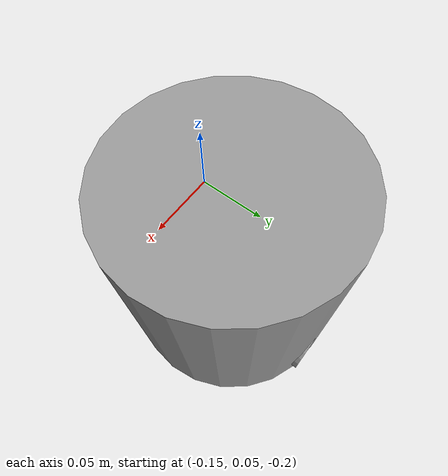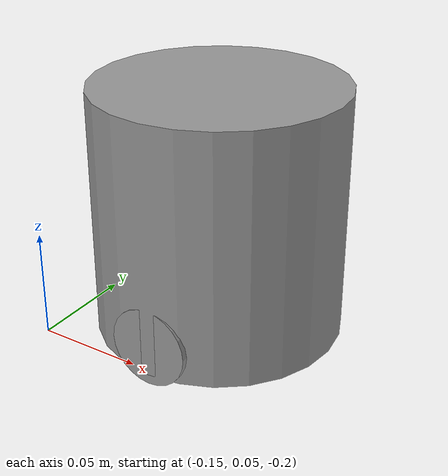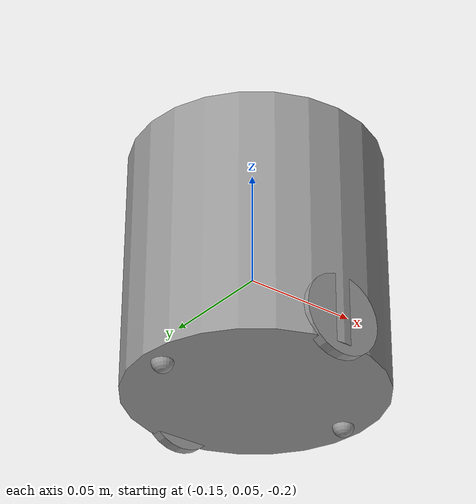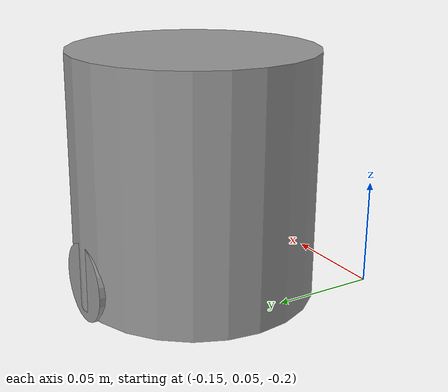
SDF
<?xml version='1.0'?>
<sdf version='1.6'>
  <model name='diffdrive'>
    <link name='body_link'>
      <inertial>
        <mass>0.5</mass>
        <inertia>
          <ixx>0.00105</ixx>
          <ixy>0</ixy>
          <ixz>0</ixz>
          <iyy>0.00105</iyy>
          <iyz>0</iyz>
          <izz>0.0009</izz>
        </inertia>
        <pose frame=''>0 0 0 0 -0 0</pose>
      </inertial>
      <pose frame=''>-0.09669 0.115845 -0.147804 0 -0 0</pose>
      <gravity>1</gravity>
      <self_collide>0</self_collide>
      <kinematic>0</kinematic>
      <enable_wind>0</enable_wind>
      <visual name='visual'>
        <pose frame=''>0 0 0 0 -0 0</pose>
        <geometry>
          <cylinder>
            <radius>0.06</radius>
            <length>0.12</length>
          </cylinder>
        </geometry>
        <material>
          <lighting>1</lighting>
          <script>
            <uri>file://media/materials/scripts/gazebo.material</uri>
            <name>Gazebo/Grey</name>
          </script>
          <shader type='vertex'>
            <normal_map>__default__</normal_map>
          </shader>
          <ambient>0.3 0.3 0.3 1</ambient>
          <diffuse>0.7 0.7 0.7 1</diffuse>
          <specular>0.01 0.01 0.01 1</specular>
          <emissive>0 0 0 1</emissive>
        </material>
        <transparency>0</transparency>
        <cast_shadows>1</cast_shadows>
      </visual>
      <collision name='collision'>
        <laser_retro>0</laser_retro>
        <max_contacts>10</max_contacts>
        <pose frame=''>0 0 0 0 -0 0</pose>
        <geometry>
          <cylinder>
            <radius>0.06</radius>
            <length>0.12</length>
          </cylinder>
        </geometry>
        <surface>
          <friction>
            <ode>
              <mu>1</mu>
              <mu2>1</mu2>
              <fdir1>0 0 0</fdir1>
              <slip1>0</slip1>
              <slip2>0</slip2>
            </ode>
            <torsional>
              <coefficient>1</coefficient>
              <patch_radius>0</patch_radius>
              <surface_radius>0</surface_radius>
              <use_patch_radius>1</use_patch_radius>
              <ode>
                <slip>0</slip>
              </ode>
            </torsional>
          </friction>
          <bounce>
            <restitution_coefficient>0</restitution_coefficient>
            <threshold>1e+06</threshold>
          </bounce>
          <contact>
            <collide_without_contact>0</collide_without_contact>
            <collide_without_contact_bitmask>1</collide_without_contact_bitmask>
            <collide_bitmask>1</collide_bitmask>
            <ode>
              <soft_cfm>0</soft_cfm>
              <soft_erp>0.2</soft_erp>
              <kp>1e+13</kp>
              <kd>1</kd>
              <max_vel>0.01</max_vel>
              <min_depth>0</min_depth>
            </ode>
            <bullet>
              <split_impulse>1</split_impulse>
              <split_impulse_penetration_threshold>-0.01</split_impulse_penetration_threshold>
              <soft_cfm>0</soft_cfm>
              <soft_erp>0.2</soft_erp>
              <kp>1e+13</kp>
              <kd>1</kd>
            </bullet>
          </contact>
        </surface>
      </collision>
    </link>
    <link name='link_0_0'>
      <inertial>
        <mass>0.001</mass>
        <inertia>
          <ixx>1e-08</ixx>
          <ixy>0</ixy>
          <ixz>0</ixz>
          <iyy>1e-08</iyy>
          <iyz>0</iyz>
          <izz>1e-08</izz>
        </inertia>
        <pose frame=''>0 0 0 0 -0 0</pose>
      </inertial>
      <pose frame=''>-0.04669 0.115845 -0.207804 -2.8e-05 -0.084293 0.000563</pose>
      <gravity>1</gravity>
      <self_collide>0</self_collide>
      <kinematic>0</kinematic>
      <enable_wind>0</enable_wind>
      <visual name='visual'>
        <pose frame=''>0 0 0 0 -0 0</pose>
        <geometry>
          <sphere>
            <radius>0.005</radius>
          </sphere>
        </geometry>
        <material>
          <lighting>1</lighting>
          <script>
            <uri>file://media/materials/scripts/gazebo.material</uri>
            <name>Gazebo/Grey</name>
          </script>
          <shader type='vertex'>
            <normal_map>__default__</normal_map>
          </shader>
          <ambient>0.3 0.3 0.3 1</ambient>
          <diffuse>0.7 0.7 0.7 1</diffuse>
          <specular>0.01 0.01 0.01 1</specular>
          <emissive>0 0 0 1</emissive>
        </material>
        <transparency>0</transparency>
        <cast_shadows>1</cast_shadows>
      </visual>
      <collision name='collision'>
        <laser_retro>0</laser_retro>
        <max_contacts>10</max_contacts>
        <pose frame=''>0 0 0 0 -0 0</pose>
        <geometry>
          <sphere>
            <radius>0.005</radius>
          </sphere>
        </geometry>
        <surface>
          <friction>
            <ode>
              <mu>1</mu>
              <mu2>1</mu2>
              <fdir1>0 0 0</fdir1>
              <slip1>0</slip1>
              <slip2>0</slip2>
            </ode>
            <torsional>
              <coefficient>1</coefficient>
              <patch_radius>0</patch_radius>
              <surface_radius>0</surface_radius>
              <use_patch_radius>1</use_patch_radius>
              <ode>
                <slip>0</slip>
              </ode>
            </torsional>
          </friction>
          <bounce>
            <restitution_coefficient>0</restitution_coefficient>
            <threshold>1e+06</threshold>
          </bounce>
          <contact>
            <collide_without_contact>0</collide_without_contact>
            <collide_without_contact_bitmask>1</collide_without_contact_bitmask>
            <collide_bitmask>1</collide_bitmask>
            <ode>
              <soft_cfm>0</soft_cfm>
              <soft_erp>0.2</soft_erp>
              <kp>1e+13</kp>
              <kd>1</kd>
              <max_vel>0.01</max_vel>
              <min_depth>0</min_depth>
            </ode>
            <bullet>
              <split_impulse>1</split_impulse>
              <split_impulse_penetration_threshold>-0.01</split_impulse_penetration_threshold>
              <soft_cfm>0</soft_cfm>
              <soft_erp>0.2</soft_erp>
              <kp>1e+13</kp>
              <kd>1</kd>
            </bullet>
          </contact>
        </surface>
      </collision>
    </link>
    <link name='link_0_0_clone'>
      <inertial>
        <mass>0.001</mass>
        <inertia>
          <ixx>1e-08</ixx>
          <ixy>0</ixy>
          <ixz>0</ixz>
          <iyy>1e-08</iyy>
          <iyz>0</iyz>
          <izz>1e-08</izz>
        </inertia>
        <pose frame=''>0 0 0 0 -0 0</pose>
      </inertial>
      <pose frame=''>-0.14669 0.115845 -0.207804 -0.000104 -0.168586 0.001134</pose>
      <gravity>1</gravity>
      <self_collide>0</self_collide>
      <kinematic>0</kinematic>
      <enable_wind>0</enable_wind>
      <visual name='visual_0'>
        <pose frame=''>0 0 0 0 -0 0</pose>
        <geometry>
          <sphere>
            <radius>0.005</radius>
          </sphere>
        </geometry>
        <material>
          <lighting>1</lighting>
          <script>
            <uri>file://media/materials/scripts/gazebo.material</uri>
            <name>Gazebo/Grey</name>
          </script>
          <shader type='vertex'>
            <normal_map>__default__</normal_map>
          </shader>
          <ambient>0.3 0.3 0.3 1</ambient>
          <diffuse>0.7 0.7 0.7 1</diffuse>
          <specular>0.01 0.01 0.01 1</specular>
          <emissive>0 0 0 1</emissive>
        </material>
        <transparency>0</transparency>
        <cast_shadows>1</cast_shadows>
      </visual>
      <collision name='collision'>
        <laser_retro>0</laser_retro>
        <max_contacts>10</max_contacts>
        <pose frame=''>0 0 0 0 -0 0</pose>
        <geometry>
          <sphere>
            <radius>0.005</radius>
          </sphere>
        </geometry>
        <surface>
          <friction>
            <ode>
              <mu>1</mu>
              <mu2>1</mu2>
              <fdir1>0 0 0</fdir1>
              <slip1>0</slip1>
              <slip2>0</slip2>
            </ode>
            <torsional>
              <coefficient>1</coefficient>
              <patch_radius>0</patch_radius>
              <surface_radius>0</surface_radius>
              <use_patch_radius>1</use_patch_radius>
              <ode>
                <slip>0</slip>
              </ode>
            </torsional>
          </friction>
          <bounce>
            <restitution_coefficient>0</restitution_coefficient>
            <threshold>1e+06</threshold>
          </bounce>
          <contact>
            <collide_without_contact>0</collide_without_contact>
            <collide_without_contact_bitmask>1</collide_without_contact_bitmask>
            <collide_bitmask>1</collide_bitmask>
            <ode>
              <soft_cfm>0</soft_cfm>
              <soft_erp>0.2</soft_erp>
              <kp>1e+13</kp>
              <kd>1</kd>
              <max_vel>0.01</max_vel>
              <min_depth>0</min_depth>
            </ode>
            <bullet>
              <split_impulse>1</split_impulse>
              <split_impulse_penetration_threshold>-0.01</split_impulse_penetration_threshold>
              <soft_cfm>0</soft_cfm>
              <soft_erp>0.2</soft_erp>
              <kp>1e+13</kp>
              <kd>1</kd>
            </bullet>
          </contact>
        </surface>
      </collision>
    </link>
    <link name='link_1'>
      <inertial>
        <mass>0.1</mass>
        <inertia>
          <ixx>9.23e-06</ixx>
          <ixy>0</ixy>
          <ixz>0</ixz>
          <iyy>9.23e-06</iyy>
          <iyz>0</iyz>
          <izz>1.805e-05</izz>
        </inertia>
        <pose frame=''>0 0 0 0 -0 0</pose>
      </inertial>
      <pose frame=''>-0.09669 0.172845 -0.193804 1.5707 -0 0</pose>
      <gravity>1</gravity>
      <self_collide>0</self_collide>
      <kinematic>0</kinematic>
      <enable_wind>0</enable_wind>
      <visual name='visual'>
        <pose frame=''>0 0 0 0 -0 0</pose>
        <geometry>
          <cylinder>
            <radius>0.019</radius>
            <length>0.005</length>
          </cylinder>
        </geometry>
        <material>
          <lighting>1</lighting>
          <script>
            <uri>file://media/materials/scripts/gazebo.material</uri>
            <name>Gazebo/Grey</name>
          </script>
          <shader type='vertex'>
            <normal_map>__default__</normal_map>
          </shader>
          <ambient>0.3 0.3 0.3 1</ambient>
          <diffuse>0.7 0.7 0.7 1</diffuse>
          <specular>0.01 0.01 0.01 1</specular>
          <emissive>0 0 0 1</emissive>
        </material>
        <transparency>0</transparency>
        <cast_shadows>1</cast_shadows>
      </visual>
      <collision name='collision'>
        <laser_retro>0</laser_retro>
        <max_contacts>10</max_contacts>
        <pose frame=''>0 0 0 0 -0 0</pose>
        <geometry>
          <cylinder>
            <radius>0.019</radius>
            <length>0.005</length>
          </cylinder>
        </geometry>
        <surface>
          <friction>
            <ode>
              <mu>1</mu>
              <mu2>1</mu2>
              <fdir1>0 0 0</fdir1>
              <slip1>0</slip1>
              <slip2>0</slip2>
            </ode>
            <torsional>
              <coefficient>1</coefficient>
              <patch_radius>0</patch_radius>
              <surface_radius>0</surface_radius>
              <use_patch_radius>1</use_patch_radius>
              <ode>
                <slip>0</slip>
              </ode>
            </torsional>
          </friction>
          <bounce>
            <restitution_coefficient>0</restitution_coefficient>
            <threshold>1e+06</threshold>
          </bounce>
          <contact>
            <collide_without_contact>0</collide_without_contact>
            <collide_without_contact_bitmask>1</collide_without_contact_bitmask>
            <collide_bitmask>1</collide_bitmask>
            <ode>
              <soft_cfm>0</soft_cfm>
              <soft_erp>0.2</soft_erp>
              <kp>1e+13</kp>
              <kd>1</kd>
              <max_vel>0.01</max_vel>
              <min_depth>0</min_depth>
            </ode>
            <bullet>
              <split_impulse>1</split_impulse>
              <split_impulse_penetration_threshold>-0.01</split_impulse_penetration_threshold>
              <soft_cfm>0</soft_cfm>
              <soft_erp>0.2</soft_erp>
              <kp>1e+13</kp>
              <kd>1</kd>
            </bullet>
          </contact>
        </surface>
      </collision>
    </link>
    <link name='link_1_clone'>
      <inertial>
        <mass>0.1</mass>
        <inertia>
          <ixx>9.23e-06</ixx>
          <ixy>0</ixy>
          <ixz>0</ixz>
          <iyy>9.23e-06</iyy>
          <iyz>0</iyz>
          <izz>1.805e-05</izz>
        </inertia>
        <pose frame=''>0 0 0 0 -0 0</pose>
      </inertial>
      <pose frame=''>-0.09669 0.058845 -0.193804 1.5707 -0 0</pose>
      <gravity>1</gravity>
      <self_collide>0</self_collide>
      <kinematic>0</kinematic>
      <enable_wind>0</enable_wind>
      <visual name='visual'>
        <pose frame=''>0 0 0 0 -0 0</pose>
        <geometry>
          <cylinder>
            <radius>0.019</radius>
            <length>0.005</length>
          </cylinder>
        </geometry>
        <material>
          <lighting>1</lighting>
          <script>
            <uri>file://media/materials/scripts/gazebo.material</uri>
            <name>Gazebo/Grey</name>
          </script>
          <shader type='vertex'>
            <normal_map>__default__</normal_map>
          </shader>
          <ambient>0.3 0.3 0.3 1</ambient>
          <diffuse>0.7 0.7 0.7 1</diffuse>
          <specular>0.01 0.01 0.01 1</specular>
          <emissive>0 0 0 1</emissive>
        </material>
        <transparency>0</transparency>
        <cast_shadows>1</cast_shadows>
      </visual>
      <collision name='collision'>
        <laser_retro>0</laser_retro>
        <max_contacts>10</max_contacts>
        <pose frame=''>0 0 0 0 -0 0</pose>
        <geometry>
          <cylinder>
            <radius>0.019</radius>
            <length>0.005</length>
          </cylinder>
        </geometry>
        <surface>
          <friction>
            <ode>
              <mu>1</mu>
              <mu2>1</mu2>
              <fdir1>0 0 0</fdir1>
              <slip1>0</slip1>
              <slip2>0</slip2>
            </ode>
            <torsional>
              <coefficient>1</coefficient>
              <patch_radius>0</patch_radius>
              <surface_radius>0</surface_radius>
              <use_patch_radius>1</use_patch_radius>
              <ode>
                <slip>0</slip>
              </ode>
            </torsional>
          </friction>
          <bounce>
            <restitution_coefficient>0</restitution_coefficient>
            <threshold>1e+06</threshold>
          </bounce>
          <contact>
            <collide_without_contact>0</collide_without_contact>
            <collide_without_contact_bitmask>1</collide_without_contact_bitmask>
            <collide_bitmask>1</collide_bitmask>
            <ode>
              <soft_cfm>0</soft_cfm>
              <soft_erp>0.2</soft_erp>
              <kp>1e+13</kp>
              <kd>1</kd>
              <max_vel>0.01</max_vel>
              <min_depth>0</min_depth>
            </ode>
            <bullet>
              <split_impulse>1</split_impulse>
              <split_impulse_penetration_threshold>-0.01</split_impulse_penetration_threshold>
              <soft_cfm>0</soft_cfm>
              <soft_erp>0.2</soft_erp>
              <kp>1e+13</kp>
              <kd>1</kd>
            </bullet>
          </contact>
        </surface>
      </collision>
    </link>
    <joint name='body2front_caster' type='ball'>
      <parent>body_link</parent>
      <child>link_0_0</child>
      <pose frame=''>0 0 0 0 -0 0</pose>
      <physics>
        <ode>
          <limit>
            <cfm>0</cfm>
            <erp>0.2</erp>
          </limit>
          <suspension>
            <cfm>0</cfm>
            <erp>0.2</erp>
          </suspension>
        </ode>
      </physics>
    </joint>
    <joint name='body2left_wheel' type='revolute'>
      <parent>body_link</parent>
      <child>link_1</child>
      <pose frame=''>0 0 0 0 -0 0</pose>
      <axis>
        <xyz>0 0 1</xyz>
        <use_parent_model_frame>0</use_parent_model_frame>
        <limit>
          <lower>-1.79769e+308</lower>
          <upper>1.79769e+308</upper>
          <effort>-1</effort>
          <velocity>-1</velocity>
        </limit>
        <dynamics>
          <spring_reference>0</spring_reference>
          <spring_stiffness>0</spring_stiffness>
          <damping>0</damping>
          <friction>0</friction>
        </dynamics>
      </axis>
      <physics>
        <ode>
          <limit>
            <cfm>0</cfm>
            <erp>0.2</erp>
          </limit>
          <suspension>
            <cfm>0</cfm>
            <erp>0.2</erp>
          </suspension>
        </ode>
      </physics>
    </joint>
    <joint name='body2rear_caster' type='ball'>
      <parent>body_link</parent>
      <child>link_0_0_clone</child>
      <pose frame=''>0 0 0 0 -0 0</pose>
      <physics>
        <ode>
          <limit>
            <cfm>0</cfm>
            <erp>0.2</erp>
          </limit>
          <suspension>
            <cfm>0</cfm>
            <erp>0.2</erp>
          </suspension>
        </ode>
      </physics>
    </joint>
    <joint name='body2right_wheel' type='revolute'>
      <parent>body_link</parent>
      <child>link_1_clone</child>
      <pose frame=''>0 0 0 0 -0 0</pose>
      <axis>
        <xyz>0 0 1</xyz>
        <use_parent_model_frame>0</use_parent_model_frame>
        <limit>
          <lower>-1.79769e+308</lower>
          <upper>1.79769e+308</upper>
          <effort>-1</effort>
          <velocity>-1</velocity>
        </limit>
        <dynamics>
          <spring_reference>0</spring_reference>
          <spring_stiffness>0</spring_stiffness>
          <damping>0</damping>
          <friction>0</friction>
        </dynamics>
      </axis>
      <physics>
        <ode>
          <limit>
            <cfm>0</cfm>
            <erp>0.2</erp>
          </limit>
          <suspension>
            <cfm>0</cfm>
            <erp>0.2</erp>
          </suspension>
        </ode>
      </physics>
    </joint>
    <static>0</static>
    <allow_auto_disable>1</allow_auto_disable>
    <plugin name='differential_drive_controller' filename='libgazebo_ros_diff_drive.so'>
      <alwaysOn>1</alwaysOn>
      <updateRate>20</updateRate>
      <leftJoint>body2left_wheel</leftJoint>
      <rightJoint>body2right_wheel</rightJoint>
      <wheelSeparation>0.105</wheelSeparation>
      <wheelDiameter>0.038</wheelDiameter>
      <torque>20.0</torque>
      <commandTopic>cmd_vel</commandTopic>
      <odometryTopic>odom</odometryTopic>
      <odometryFrame>odom</odometryFrame>
      <robotBaseFrame>base_footprint</robotBaseFrame>
      <robotNamespace>/</robotNamespace>
    </plugin>
  </model>
</sdf>
